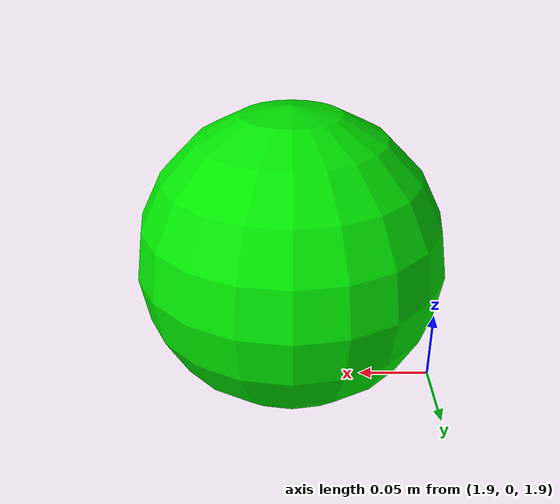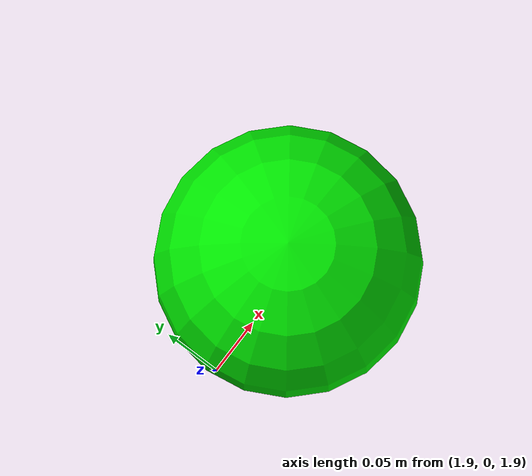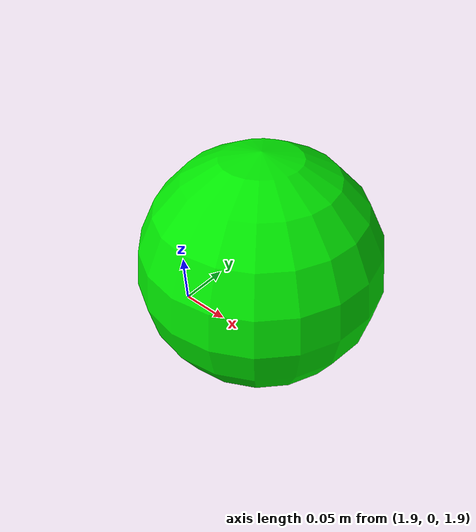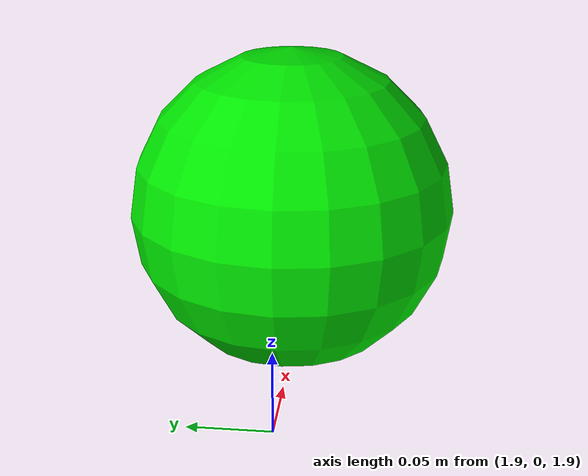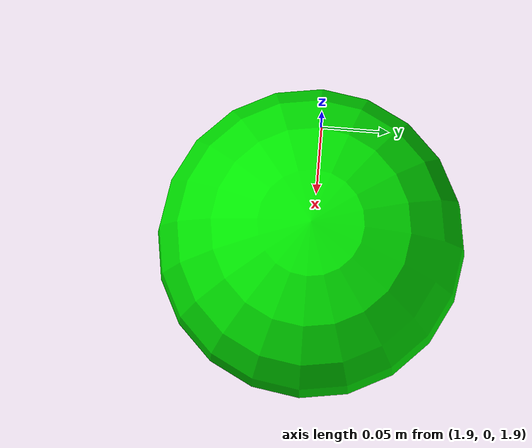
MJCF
<mujoco>
    <option timestep="0.001" integrator="RK4" gravity="0 0 -9.81">
        <flag sensornoise="disable" energy="enable" contact="enable" />
    </option>

    <asset>
        <texture name="grid" type="2d" builtin="checker" width="512" height="512" rgb1=".1 .2 .3"
            rgb2=".2 .3 .4" />
        <material name="grid" texture="grid" texrepeat="1 1" texuniform="true" reflectance=".2" />
    </asset>

    <worldbody>
        <geom name="floor" size="0 0 .05" type="plane" material="grid" />
        <light diffuse=".5 .5 .5" pos="0 0 5" dir="0 0 -1" />
    </worldbody>

    <worldbody>
        <body name="bowling" pos="2 0 2">
            <freejoint />
            <geom type="sphere" size=".1 .1 .1" rgba="0 .9 0 1" mass="1" />
        </body>
    </worldbody>
</mujoco>
